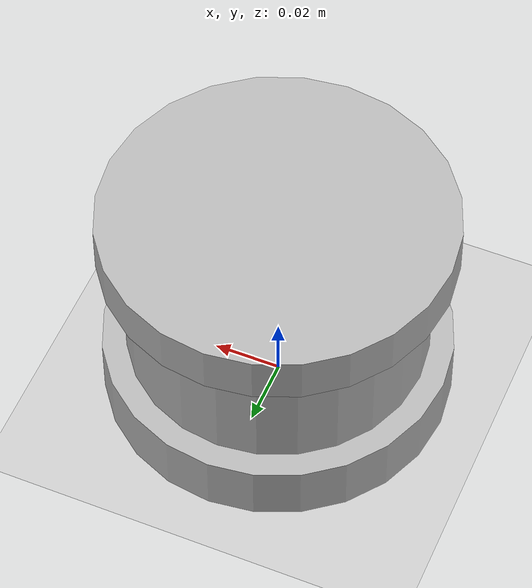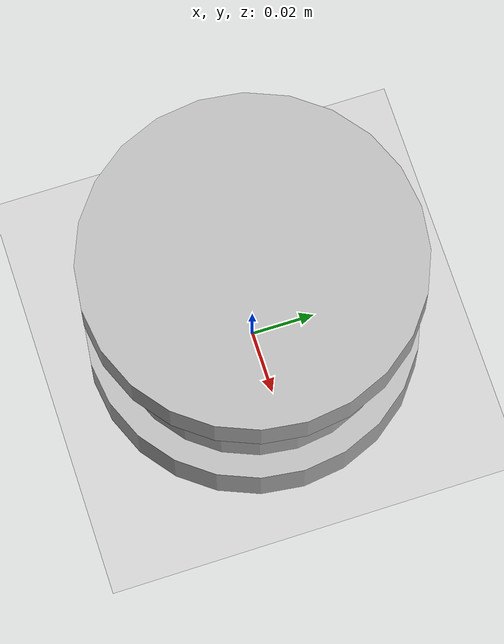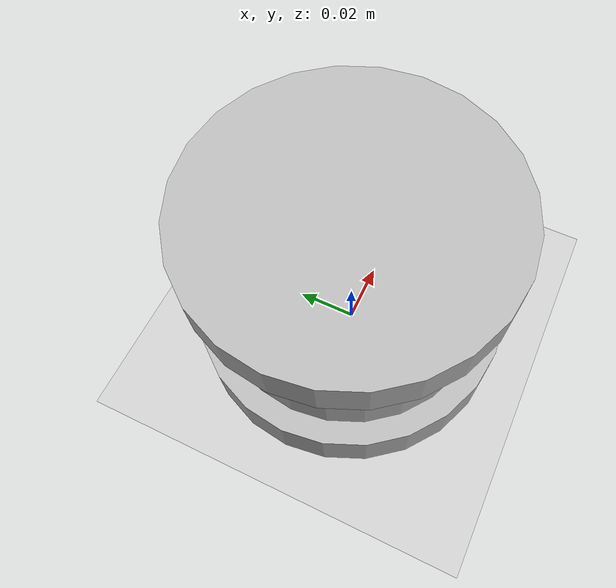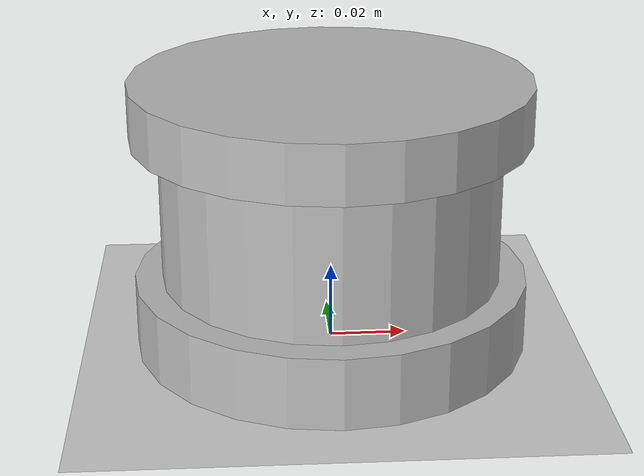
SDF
<?xml version="1.0" ?>
<sdf version="1.5">
  <world name="default">

    <!-- A global light source -->
    <include>
      <uri>model://sun</uri>
    </include>

    <!-- A ground plane -->
    <include>
      <uri>model://ground_plane</uri>
    </include>

	<model name="velodyne_VLP-16">
	  <!-- Give the base link a unique name -->
	  <link name="base">

	    <!-- Offset the base by half the lenght of the cylinder -->
	    <pose>0 0 0.0094 0 0 0</pose>
	     <inertial>
	      <mass>0.4</mass>
	      <inertia>
		<ixx>0.000278553</ixx>
		<iyy>0.000278553</iyy>
		<izz>0.000533544</izz>
		<ixy>0</ixy>
		<ixz>0</ixz>
		<iyz>0</iyz>
	      </inertia>
	    </inertial>
	    <collision name="base_collision">
	      <geometry>
		<cylinder>
		  <!-- Radius and length provided by Velodyne -->
		  <radius>.05165</radius>
		  <length>.01880</length>
		</cylinder>
	      </geometry>
	    </collision>

	    <!-- The visual is mostly a copy of the collision -->
	    <visual name="base_visual">
	      <geometry>
		<cylinder>
		  <radius>.05165</radius>
		  <length>.01880</length>
		</cylinder>
	      </geometry>
	    </visual>
	  </link>

	  <!-- Give the base link a unique name -->
	  <link name="middle">
	  <sensor type="ray" name="sensor">

	  <pose>0 0 -0.000803 1.5707 0 0</pose>

	  <!-- Enable visualization to see the rays in the GUI -->
	  <visualize>true</visualize>

	  <!-- Set the update rate of the sensor -->
	  <update_rate>30</update_rate>

	  <ray>
	  	<noise>
		      <!-- Use gaussian noise -->
		      <type>gaussian</type>
		      <mean>0.0</mean>
		      <stddev>0.1</stddev>
		</noise>

	  <!-- The scan element contains the horizontal and vertical beams.
	       We are leaving out the vertical beams for this tutorial. -->
	  <scan>

	    <!-- The horizontal beams -->
	    <horizontal>
	      <!-- The velodyne has 16 beams(samples) -->
	      <samples>16</samples>

	      <!-- Resolution is multiplied by samples to determine number of
		   simulated beams vs interpolated beams. See:
		   http://sdformat.org/spec?ver=1.6&elem=sensor#horizontal_resolution
		   -->
	      <resolution>1</resolution>

	      <!-- Minimum angle in radians -->
	      <min_angle>-0.53529248</min_angle>

	      <!-- Maximum angle in radians -->
	      <max_angle>0.18622663</max_angle>
	    </horizontal>
	  </scan>

	  <!-- Range defines characteristics of an individual beam -->
	  <range>

	    <!-- Minimum distance of the beam -->
	    <min>0.05</min>

	    <!-- Maximum distance of the beam -->
	    <max>100</max>

	    <!-- Linear resolution of the beam -->
	    <resolution>0.02</resolution>
	  </range>
	</ray>
	</sensor>

	    <!-- Vertically offset the middle cylinder by the length of the bottom
		cylinder and half the length of this cylinder. -->
	    <pose>0 0 0.037850 0 0 0</pose>
	    <inertial>
	    <mass>0.215</mass>
	    <inertia>
	      <ixx>0.000132207</ixx>
	      <iyy>0.000132207</iyy>
	      <izz>0.000212398</izz>
	      <ixy>0</ixy>
	      <ixz>0</ixz>
	      <iyz>0</iyz>
	    </inertia>
	   </inertial>
	    <collision name="middle_collision">
	      <geometry>
		<cylinder>
		  <!-- Radius and length provided by Velodyne -->
		  <radius>0.04445</radius>
		  <length>0.03810</length>
		</cylinder>
	      </geometry>
	    </collision>

	    <!-- The visual is mostly a copy of the collision -->
	    <visual name="middle_visual">
	      <geometry>
		<cylinder>
		  <radius>0.04445</radius>
		  <length>0.03810</length>
		</cylinder>
	      </geometry>
	    </visual>
	  </link>

	  <link name="top">
	    <!-- Vertically offset the top cylinder by the length of the bottom
		cylinder and half the length of this cylinder. -->
	    <pose>0 0 0.0643 0 0 0</pose>
	     <inertial>
	     <mass>0.215</mass>
	     <inertia>
	       <ixx>0.000147314</ixx>
	       <iyy>0.000147314</iyy>
	       <izz>0.000286780</izz>
	       <ixy>0</ixy>
	       <ixz>0</ixz>
	       <iyz>0</iyz>
	     </inertia>
	   </inertial>
	    <collision name="top_collision">
	      <geometry>
		<cylinder>
		  <!-- Radius and length provided by Velodyne -->
		  <radius>0.05165</radius>
		  <length>0.01480</length>
		</cylinder>
	      </geometry>
	    </collision>

	    <!-- The visual is mostly a copy of the collision -->
	    <visual name="top_visual">
	      <geometry>
		<cylinder>
		  <radius>0.05165</radius>
		  <length>0.01480</length>
		</cylinder>
	      </geometry>
	    </visual>
	  </link>

	  <joint type="revolute" name="joint">

	  <!-- Position the joint at the bottom of the top link -->
	  <pose>0 0 -0.019000 0 0 0</pose>

	  <!-- Use the base link as the parent of the joint -->
	  <parent>base</parent>

	  <!-- Use the middle link as the child of the joint -->
	  <child>middle</child>

	  <!-- The axis defines the joint's degree of freedom -->
	  <axis>

	    <!-- Revolve around the z-axis -->
	    <xyz>0 0 1</xyz>

	    <!-- Limit refers to the range of motion of the joint -->
	    <limit>

	      <!-- Use a very large number to indicate a continuous revolution -->
	      <lower>-10000000000000000</lower>
	      <upper>10000000000000000</upper>
	    </limit>
	  </axis>
	</joint>
	<joint type="fixed" name="joint2">

	  <!-- Position the joint at the bottom of the top link -->
	  <pose>0 0 0.019050 0 0 0</pose>

	  <!-- Use the top link as the parent of the joint -->
	  <parent>top</parent>

	  <!-- Use the middle link as the child of the joint -->
	  <child>middle</child>
	</joint>

	</model>

  </world>
</sdf>
